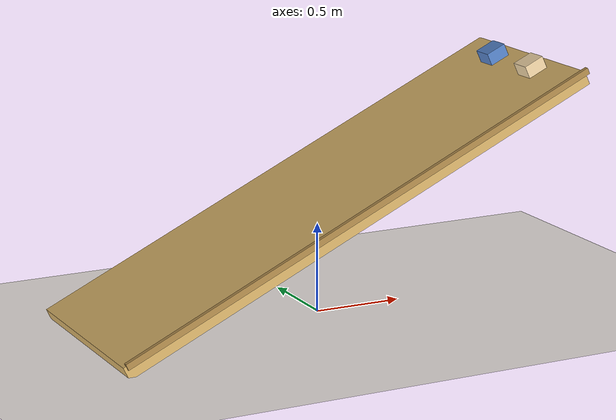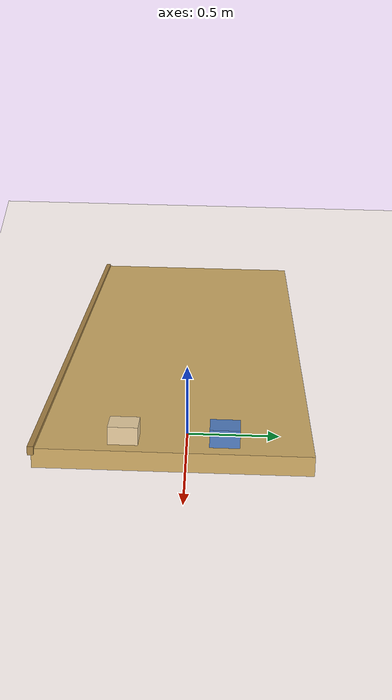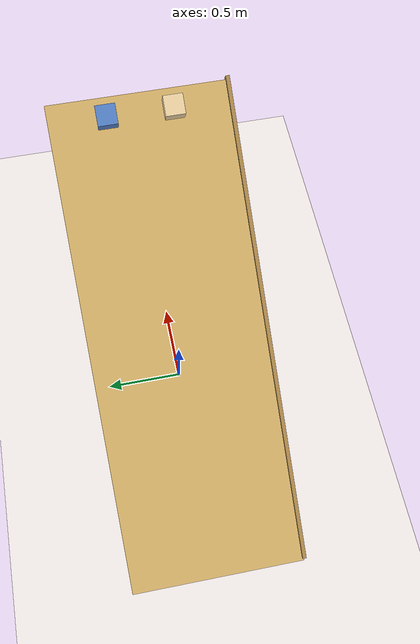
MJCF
<mujoco model="incline_friction">
  <compiler angle="radian" coordinate="local" autolimits="true"/>
  <option timestep="0.002" gravity="0 0 -9.81" integrator="implicitfast"
          impratio="3" cone="elliptic"/>

  <visual>
    <headlight diffuse="0 0 0" ambient="0.50 0.48 0.55" specular="0 0 0"/>
    <rgba haze="0.94 0.91 0.90 1"/>
    <global azimuth="120" elevation="-15" offwidth="1920" offheight="1080" fovy="38"/>
    <quality shadowsize="8192" offsamples="8"/>
    <map shadowclip="6" shadowscale="0.7"/>
  </visual>

  <asset>
    <texture type="skybox" builtin="flat"
             rgb1="0.74 0.68 0.86" rgb2="0.74 0.68 0.86"
             width="512" height="512" mark="none" markrgb="0 0 0"/>

    <material name="floor_mat" rgba="0.94 0.91 0.90 1" specular="0" shininess="0"/>
    <material name="ramp_mat" rgba="0.86 0.71 0.42 1" specular="0.1" shininess="0.15"/>
    <material name="ramp_dark" rgba="0.70 0.55 0.30 1" specular="0.1" shininess="0.15"/>
    <material name="block_cream" rgba="0.96 0.85 0.66 1" specular="0.2" shininess="0.25"/>
    <material name="block_blue" rgba="0.34 0.52 0.80 1" specular="0.35" shininess="0.4"/>
  </asset>

  <worldbody>
    <light pos="0 0 12" dir="-0.30 0.55 -1" directional="true" castshadow="true"
           diffuse="0.85 0.82 0.78" specular="0.15 0.15 0.15"/>
    <light pos="0 0 8" dir="0.40 -0.30 -1" directional="true" castshadow="false"
           diffuse="0.28 0.28 0.34" specular="0 0 0"/>

    <geom name="floor" type="plane" size="40 40 0.1" material="floor_mat"/>

    <!-- Ramp friction set very low so each block's own mu dominates the
         contact (MuJoCo combines paired frictions by element-wise max). -->
    <geom name="ramp" type="box" size="1.5 0.55 0.04"
          pos="0 0 0.65" euler="0 -0.4363 0"
          material="ramp_mat" friction="0.001 0.0001 0.00001"/>
    <!-- A thin side rail on the front edge so the slope is visually clear -->
    <geom type="box" size="1.5 0.012 0.018"
          pos="0 -0.55 0.69" euler="0 -0.4363 0" material="ramp_dark"/>

    <!-- Block A: high friction (cream).  Will NOT slide (mu > tan 25 = 0.466). -->
    <body name="blockA" pos="1.221 -0.20 1.289" euler="0 -0.4363 0">
      <joint type="free"/>
      <geom type="box" size="0.06 0.06 0.05" mass="0.3"
            material="block_cream" friction="0.6 0.04 0.001"/>
    </body>

    <!-- Block B: low friction (blue).  Will slide down. -->
    <body name="blockB" pos="1.221 0.20 1.289" euler="0 -0.4363 0">
      <joint type="free"/>
      <geom type="box" size="0.06 0.06 0.05" mass="0.3"
            material="block_blue" friction="0.05 0.001 0.0001"/>
    </body>

    <!-- Camera: in front of and slightly above the ramp -->
    <camera name="cam" pos="0.3 -3.0 1.4" fovy="38"
            xyaxes="0.995 0.100 0   -0.030 0.295 0.955"/>
  </worldbody>
</mujoco>
